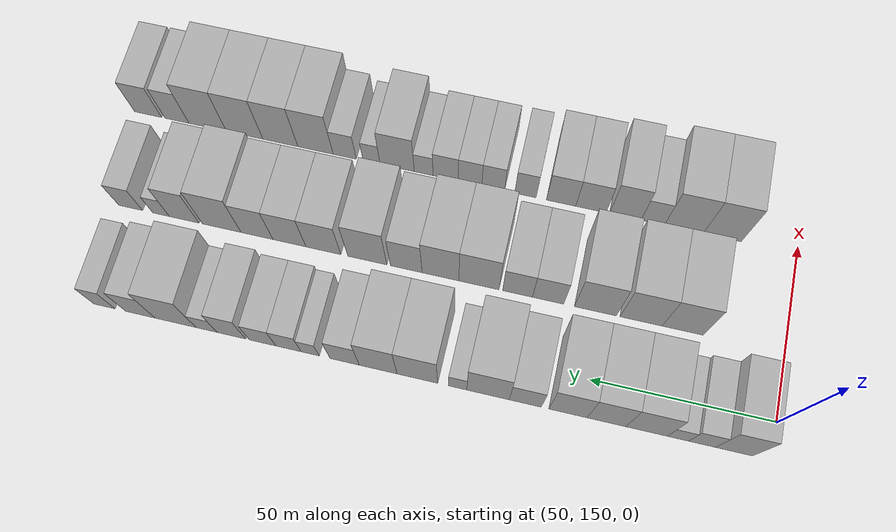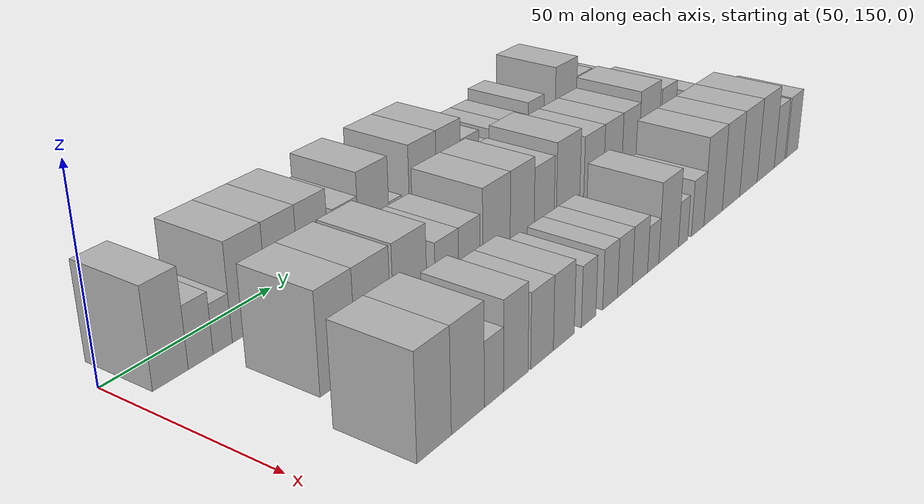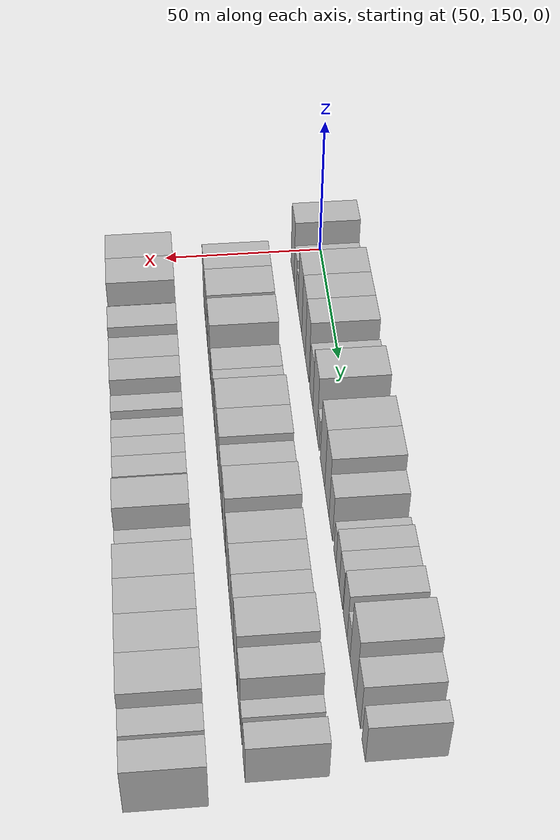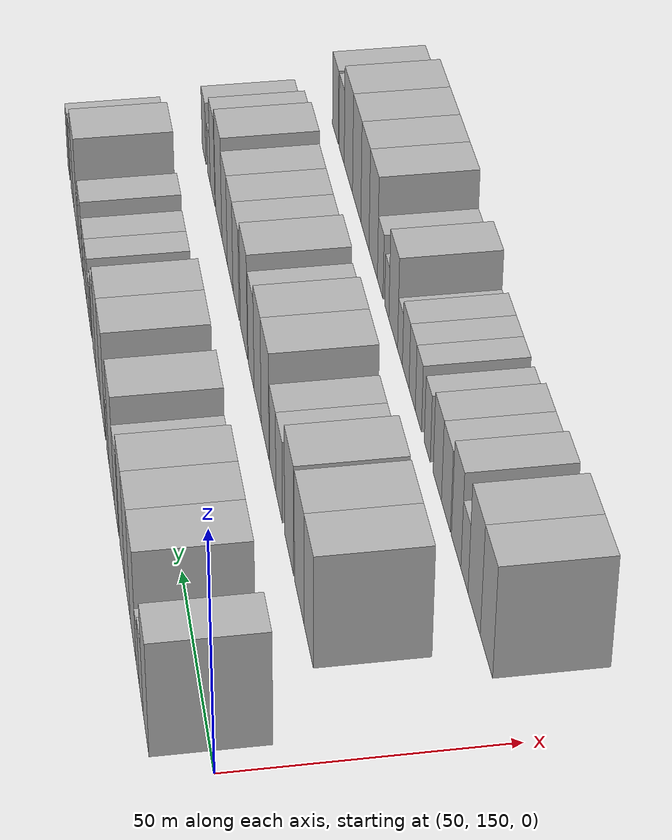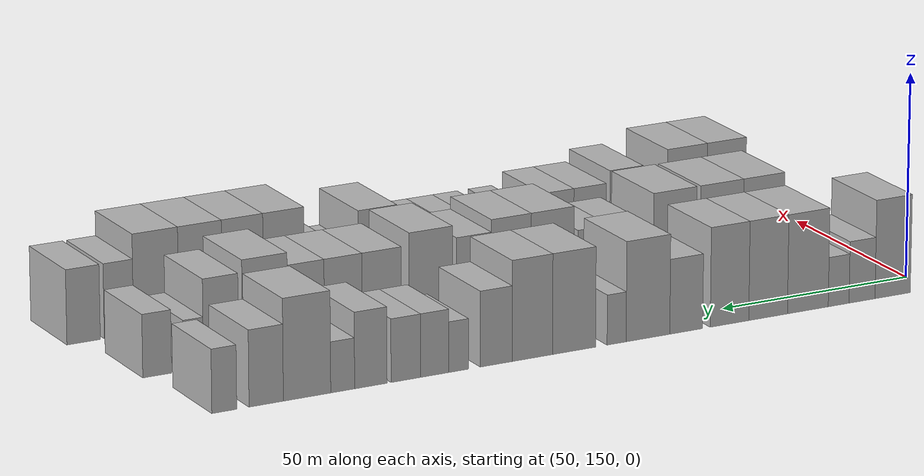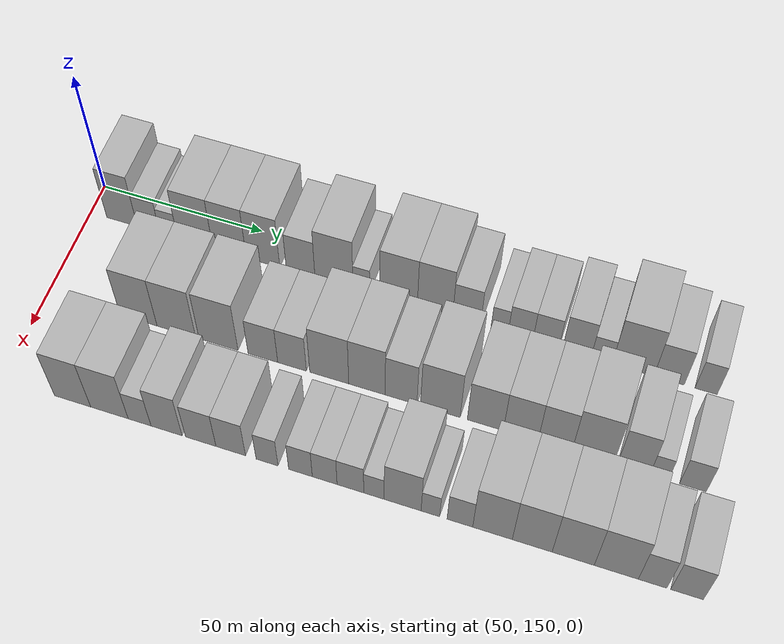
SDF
<sdf version="1.6">
 <world name="default">
  <model name="building_54">
   <static>1</static>
   <pose>50.0000 160.0127 0 0.000000 0.000000 0.000000</pose>
   <link name="link">
    <pose>0 0 12.00 0 0 0</pose>
    <collision name="collision"><geometry><box><size>20.0000 9.6808 24.0000</size></box></geometry></collision>
    <visual name="visual">
     <cast_shadows>0</cast_shadows>
     <geometry><box><size>20.0000 9.6808 24.0000</size></box></geometry>
     <material>
      <script>
       <uri>model://HANNAS_wall/materials/scripts</uri>
       <uri>model://HANNAS_wall/materials/textures</uri>
       <name>vrc/HANNAS_wall</name>
      </script>
     </material>
    </visual>
   </link>
  </model>
  <model name="building_55">
   <static>1</static>
   <pose>50.0000 168.3861 0 0.000000 0.000000 0.000000</pose>
   <link name="link">
    <pose>0 0 7.50 0 0 0</pose>
    <collision name="collision"><geometry><box><size>20.0000 7.0662 15.0000</size></box></geometry></collision>
    <visual name="visual">
     <cast_shadows>0</cast_shadows>
     <geometry><box><size>20.0000 7.0662 15.0000</size></box></geometry>
     <material>
      <script>
       <uri>model://HANNAS_wall/materials/scripts</uri>
       <uri>model://HANNAS_wall/materials/textures</uri>
       <name>vrc/HANNAS_wall</name>
      </script>
     </material>
    </visual>
   </link>
  </model>
  <model name="building_56">
   <static>1</static>
   <pose>50.0000 174.7349 0 0.000000 0.000000 0.000000</pose>
   <link name="link">
    <pose>0 0 6.00 0 0 0</pose>
    <collision name="collision"><geometry><box><size>20.0000 5.6313 12.0000</size></box></geometry></collision>
    <visual name="visual">
     <cast_shadows>0</cast_shadows>
     <geometry><box><size>20.0000 5.6313 12.0000</size></box></geometry>
     <material>
      <script>
       <uri>model://HANNAS_wall/materials/scripts</uri>
       <uri>model://HANNAS_wall/materials/textures</uri>
       <name>vrc/HANNAS_wall</name>
      </script>
     </material>
    </visual>
   </link>
  </model>
  <model name="building_57">
   <static>1</static>
   <pose>50.0000 183.0591 0 0.000000 0.000000 0.000000</pose>
   <link name="link">
    <pose>0 0 12.00 0 0 0</pose>
    <collision name="collision"><geometry><box><size>20.0000 11.0171 24.0000</size></box></geometry></collision>
    <visual name="visual">
     <cast_shadows>0</cast_shadows>
     <geometry><box><size>20.0000 11.0171 24.0000</size></box></geometry>
     <material>
      <script>
       <uri>model://HANNAS_wall/materials/scripts</uri>
       <uri>model://HANNAS_wall/materials/textures</uri>
       <name>vrc/HANNAS_wall</name>
      </script>
     </material>
    </visual>
   </link>
  </model>
  <model name="building_58">
   <static>1</static>
   <pose>50.0000 193.7491 0 0.000000 0.000000 0.000000</pose>
   <link name="link">
    <pose>0 0 12.00 0 0 0</pose>
    <collision name="collision"><geometry><box><size>20.0000 10.3629 24.0000</size></box></geometry></collision>
    <visual name="visual">
     <cast_shadows>0</cast_shadows>
     <geometry><box><size>20.0000 10.3629 24.0000</size></box></geometry>
     <material>
      <script>
       <uri>model://HANNAS_wall/materials/scripts</uri>
       <uri>model://HANNAS_wall/materials/textures</uri>
       <name>vrc/HANNAS_wall</name>
      </script>
     </material>
    </visual>
   </link>
  </model>
  <model name="building_59">
   <static>1</static>
   <pose>50.0000 204.0609 0 0.000000 0.000000 0.000000</pose>
   <link name="link">
    <pose>0 0 12.00 0 0 0</pose>
    <collision name="collision"><geometry><box><size>20.0000 10.2606 24.0000</size></box></geometry></collision>
    <visual name="visual">
     <cast_shadows>0</cast_shadows>
     <geometry><box><size>20.0000 10.2606 24.0000</size></box></geometry>
     <material>
      <script>
       <uri>model://HANNAS_wall/materials/scripts</uri>
       <uri>model://HANNAS_wall/materials/textures</uri>
       <name>vrc/HANNAS_wall</name>
      </script>
     </material>
    </visual>
   </link>
  </model>
  <model name="building_60">
   <static>1</static>
   <pose>50.0000 215.5393 0 0.000000 0.000000 0.000000</pose>
   <link name="link">
    <pose>0 0 9.00 0 0 0</pose>
    <collision name="collision"><geometry><box><size>20.0000 8.6963 18.0000</size></box></geometry></collision>
    <visual name="visual">
     <cast_shadows>0</cast_shadows>
     <geometry><box><size>20.0000 8.6963 18.0000</size></box></geometry>
     <material>
      <script>
       <uri>model://HANNAS_wall/materials/scripts</uri>
       <uri>model://HANNAS_wall/materials/textures</uri>
       <name>vrc/HANNAS_wall</name>
      </script>
     </material>
    </visual>
   </link>
  </model>
  <model name="building_61">
   <static>1</static>
   <pose>50.0000 225.6269 0 0.000000 0.000000 0.000000</pose>
   <link name="link">
    <pose>0 0 12.00 0 0 0</pose>
    <collision name="collision"><geometry><box><size>20.0000 11.4789 24.0000</size></box></geometry></collision>
    <visual name="visual">
     <cast_shadows>0</cast_shadows>
     <geometry><box><size>20.0000 11.4789 24.0000</size></box></geometry>
     <material>
      <script>
       <uri>model://HANNAS_wall/materials/scripts</uri>
       <uri>model://HANNAS_wall/materials/textures</uri>
       <name>vrc/HANNAS_wall</name>
      </script>
     </material>
    </visual>
   </link>
  </model>
  <model name="building_62">
   <static>1</static>
   <pose>50.0000 233.8528 0 0.000000 0.000000 0.000000</pose>
   <link name="link">
    <pose>0 0 6.00 0 0 0</pose>
    <collision name="collision"><geometry><box><size>20.0000 4.9729 12.0000</size></box></geometry></collision>
    <visual name="visual">
     <cast_shadows>0</cast_shadows>
     <geometry><box><size>20.0000 4.9729 12.0000</size></box></geometry>
     <material>
      <script>
       <uri>model://HANNAS_wall/materials/scripts</uri>
       <uri>model://HANNAS_wall/materials/textures</uri>
       <name>vrc/HANNAS_wall</name>
      </script>
     </material>
    </visual>
   </link>
  </model>
  <model name="building_63">
   <static>1</static>
   <pose>50.0000 244.9158 0 0.000000 0.000000 0.000000</pose>
   <link name="link">
    <pose>0 0 12.00 0 0 0</pose>
    <collision name="collision"><geometry><box><size>20.0000 11.1530 24.0000</size></box></geometry></collision>
    <visual name="visual">
     <cast_shadows>0</cast_shadows>
     <geometry><box><size>20.0000 11.1530 24.0000</size></box></geometry>
     <material>
      <script>
       <uri>model://HANNAS_wall/materials/scripts</uri>
       <uri>model://HANNAS_wall/materials/textures</uri>
       <name>vrc/HANNAS_wall</name>
      </script>
     </material>
    </visual>
   </link>
  </model>
  <model name="building_64">
   <static>1</static>
   <pose>50.0000 255.7028 0 0.000000 0.000000 0.000000</pose>
   <link name="link">
    <pose>0 0 12.00 0 0 0</pose>
    <collision name="collision"><geometry><box><size>20.0000 10.4210 24.0000</size></box></geometry></collision>
    <visual name="visual">
     <cast_shadows>0</cast_shadows>
     <geometry><box><size>20.0000 10.4210 24.0000</size></box></geometry>
     <material>
      <script>
       <uri>model://HANNAS_wall/materials/scripts</uri>
       <uri>model://HANNAS_wall/materials/textures</uri>
       <name>vrc/HANNAS_wall</name>
      </script>
     </material>
    </visual>
   </link>
  </model>
  <model name="building_65">
   <static>1</static>
   <pose>50.0000 264.9927 0 0.000000 0.000000 0.000000</pose>
   <link name="link">
    <pose>0 0 9.00 0 0 0</pose>
    <collision name="collision"><geometry><box><size>20.0000 8.1589 18.0000</size></box></geometry></collision>
    <visual name="visual">
     <cast_shadows>0</cast_shadows>
     <geometry><box><size>20.0000 8.1589 18.0000</size></box></geometry>
     <material>
      <script>
       <uri>model://HANNAS_wall/materials/scripts</uri>
       <uri>model://HANNAS_wall/materials/textures</uri>
       <name>vrc/HANNAS_wall</name>
      </script>
     </material>
    </visual>
   </link>
  </model>
  <model name="building_66">
   <static>1</static>
   <pose>50.0000 274.5761 0 0.000000 0.000000 0.000000</pose>
   <link name="link">
    <pose>0 0 6.00 0 0 0</pose>
    <collision name="collision"><geometry><box><size>20.0000 5.0078 12.0000</size></box></geometry></collision>
    <visual name="visual">
     <cast_shadows>0</cast_shadows>
     <geometry><box><size>20.0000 5.0078 12.0000</size></box></geometry>
     <material>
      <script>
       <uri>model://HANNAS_wall/materials/scripts</uri>
       <uri>model://HANNAS_wall/materials/textures</uri>
       <name>vrc/HANNAS_wall</name>
      </script>
     </material>
    </visual>
   </link>
  </model>
  <model name="building_67">
   <static>1</static>
   <pose>50.0000 280.6419 0 0.000000 0.000000 0.000000</pose>
   <link name="link">
    <pose>0 0 7.50 0 0 0</pose>
    <collision name="collision"><geometry><box><size>20.0000 7.1239 15.0000</size></box></geometry></collision>
    <visual name="visual">
     <cast_shadows>0</cast_shadows>
     <geometry><box><size>20.0000 7.1239 15.0000</size></box></geometry>
     <material>
      <script>
       <uri>model://HANNAS_wall/materials/scripts</uri>
       <uri>model://HANNAS_wall/materials/textures</uri>
       <name>vrc/HANNAS_wall</name>
      </script>
     </material>
    </visual>
   </link>
  </model>
  <model name="building_68">
   <static>1</static>
   <pose>50.0000 287.9480 0 0.000000 0.000000 0.000000</pose>
   <link name="link">
    <pose>0 0 7.50 0 0 0</pose>
    <collision name="collision"><geometry><box><size>20.0000 7.4883 15.0000</size></box></geometry></collision>
    <visual name="visual">
     <cast_shadows>0</cast_shadows>
     <geometry><box><size>20.0000 7.4883 15.0000</size></box></geometry>
     <material>
      <script>
       <uri>model://HANNAS_wall/materials/scripts</uri>
       <uri>model://HANNAS_wall/materials/textures</uri>
       <name>vrc/HANNAS_wall</name>
      </script>
     </material>
    </visual>
   </link>
  </model>
  <model name="building_69">
   <static>1</static>
   <pose>50.0000 296.7629 0 0.000000 0.000000 0.000000</pose>
   <link name="link">
    <pose>0 0 9.00 0 0 0</pose>
    <collision name="collision"><geometry><box><size>20.0000 8.1414 18.0000</size></box></geometry></collision>
    <visual name="visual">
     <cast_shadows>0</cast_shadows>
     <geometry><box><size>20.0000 8.1414 18.0000</size></box></geometry>
     <material>
      <script>
       <uri>model://HANNAS_wall/materials/scripts</uri>
       <uri>model://HANNAS_wall/materials/textures</uri>
       <name>vrc/HANNAS_wall</name>
      </script>
     </material>
    </visual>
   </link>
  </model>
  <model name="building_70">
   <static>1</static>
   <pose>50.0000 303.8157 0 0.000000 0.000000 0.000000</pose>
   <link name="link">
    <pose>0 0 6.00 0 0 0</pose>
    <collision name="collision"><geometry><box><size>20.0000 5.9644 12.0000</size></box></geometry></collision>
    <visual name="visual">
     <cast_shadows>0</cast_shadows>
     <geometry><box><size>20.0000 5.9644 12.0000</size></box></geometry>
     <material>
      <script>
       <uri>model://HANNAS_wall/materials/scripts</uri>
       <uri>model://HANNAS_wall/materials/textures</uri>
       <name>vrc/HANNAS_wall</name>
      </script>
     </material>
    </visual>
   </link>
  </model>
  <model name="building_71">
   <static>1</static>
   <pose>50.0000 312.6770 0 0.000000 0.000000 0.000000</pose>
   <link name="link">
    <pose>0 0 12.00 0 0 0</pose>
    <collision name="collision"><geometry><box><size>20.0000 11.7581 24.0000</size></box></geometry></collision>
    <visual name="visual">
     <cast_shadows>0</cast_shadows>
     <geometry><box><size>20.0000 11.7581 24.0000</size></box></geometry>
     <material>
      <script>
       <uri>model://HANNAS_wall/materials/scripts</uri>
       <uri>model://HANNAS_wall/materials/textures</uri>
       <name>vrc/HANNAS_wall</name>
      </script>
     </material>
    </visual>
   </link>
  </model>
  <model name="building_72">
   <static>1</static>
   <pose>50.0000 322.7922 0 0.000000 0.000000 0.000000</pose>
   <link name="link">
    <pose>0 0 9.00 0 0 0</pose>
    <collision name="collision"><geometry><box><size>20.0000 8.4723 18.0000</size></box></geometry></collision>
    <visual name="visual">
     <cast_shadows>0</cast_shadows>
     <geometry><box><size>20.0000 8.4723 18.0000</size></box></geometry>
     <material>
      <script>
       <uri>model://HANNAS_wall/materials/scripts</uri>
       <uri>model://HANNAS_wall/materials/textures</uri>
       <name>vrc/HANNAS_wall</name>
      </script>
     </material>
    </visual>
   </link>
  </model>
  <model name="building_73">
   <static>1</static>
   <pose>50.0000 333.0899 0 0.000000 0.000000 0.000000</pose>
   <link name="link">
    <pose>0 0 7.50 0 0 0</pose>
    <collision name="collision"><geometry><box><size>20.0000 6.1232 15.0000</size></box></geometry></collision>
    <visual name="visual">
     <cast_shadows>0</cast_shadows>
     <geometry><box><size>20.0000 6.1232 15.0000</size></box></geometry>
     <material>
      <script>
       <uri>model://HANNAS_wall/materials/scripts</uri>
       <uri>model://HANNAS_wall/materials/textures</uri>
       <name>vrc/HANNAS_wall</name>
      </script>
     </material>
    </visual>
   </link>
  </model>
  <model name="building_128">
   <static>1</static>
   <pose>79.0000 177.8788 0 0.000000 0.000000 0.000000</pose>
   <link name="link">
    <pose>0 0 12.00 0 0 0</pose>
    <collision name="collision"><geometry><box><size>20.0000 11.1970 24.0000</size></box></geometry></collision>
    <visual name="visual">
     <cast_shadows>0</cast_shadows>
     <geometry><box><size>20.0000 11.1970 24.0000</size></box></geometry>
     <material>
      <script>
       <uri>model://HANNAS_wall/materials/scripts</uri>
       <uri>model://HANNAS_wall/materials/textures</uri>
       <name>vrc/HANNAS_wall</name>
      </script>
     </material>
    </visual>
   </link>
  </model>
  <model name="building_129">
   <static>1</static>
   <pose>79.0000 189.3049 0 0.000000 0.000000 0.000000</pose>
   <link name="link">
    <pose>0 0 12.00 0 0 0</pose>
    <collision name="collision"><geometry><box><size>20.0000 11.6552 24.0000</size></box></geometry></collision>
    <visual name="visual">
     <cast_shadows>0</cast_shadows>
     <geometry><box><size>20.0000 11.6552 24.0000</size></box></geometry>
     <material>
      <script>
       <uri>model://HANNAS_wall/materials/scripts</uri>
       <uri>model://HANNAS_wall/materials/textures</uri>
       <name>vrc/HANNAS_wall</name>
      </script>
     </material>
    </visual>
   </link>
  </model>
  <model name="building_130">
   <static>1</static>
   <pose>79.0000 201.9460 0 0.000000 0.000000 0.000000</pose>
   <link name="link">
    <pose>0 0 12.00 0 0 0</pose>
    <collision name="collision"><geometry><box><size>20.0000 11.6270 24.0000</size></box></geometry></collision>
    <visual name="visual">
     <cast_shadows>0</cast_shadows>
     <geometry><box><size>20.0000 11.6270 24.0000</size></box></geometry>
     <material>
      <script>
       <uri>model://HANNAS_wall/materials/scripts</uri>
       <uri>model://HANNAS_wall/materials/textures</uri>
       <name>vrc/HANNAS_wall</name>
      </script>
     </material>
    </visual>
   </link>
  </model>
  <model name="building_131">
   <static>1</static>
   <pose>79.0000 215.1276 0 0.000000 0.000000 0.000000</pose>
   <link name="link">
    <pose>0 0 9.00 0 0 0</pose>
    <collision name="collision"><geometry><box><size>20.0000 8.7361 18.0000</size></box></geometry></collision>
    <visual name="visual">
     <cast_shadows>0</cast_shadows>
     <geometry><box><size>20.0000 8.7361 18.0000</size></box></geometry>
     <material>
      <script>
       <uri>model://HANNAS_wall/materials/scripts</uri>
       <uri>model://HANNAS_wall/materials/textures</uri>
       <name>vrc/HANNAS_wall</name>
      </script>
     </material>
    </visual>
   </link>
  </model>
  <model name="building_132">
   <static>1</static>
   <pose>79.0000 223.6908 0 0.000000 0.000000 0.000000</pose>
   <link name="link">
    <pose>0 0 9.00 0 0 0</pose>
    <collision name="collision"><geometry><box><size>20.0000 8.3902 18.0000</size></box></geometry></collision>
    <visual name="visual">
     <cast_shadows>0</cast_shadows>
     <geometry><box><size>20.0000 8.3902 18.0000</size></box></geometry>
     <material>
      <script>
       <uri>model://HANNAS_wall/materials/scripts</uri>
       <uri>model://HANNAS_wall/materials/textures</uri>
       <name>vrc/HANNAS_wall</name>
      </script>
     </material>
    </visual>
   </link>
  </model>
  <model name="building_133">
   <static>1</static>
   <pose>79.0000 234.5435 0 0.000000 0.000000 0.000000</pose>
   <link name="link">
    <pose>0 0 12.00 0 0 0</pose>
    <collision name="collision"><geometry><box><size>20.0000 11.3152 24.0000</size></box></geometry></collision>
    <visual name="visual">
     <cast_shadows>0</cast_shadows>
     <geometry><box><size>20.0000 11.3152 24.0000</size></box></geometry>
     <material>
      <script>
       <uri>model://HANNAS_wall/materials/scripts</uri>
       <uri>model://HANNAS_wall/materials/textures</uri>
       <name>vrc/HANNAS_wall</name>
      </script>
     </material>
    </visual>
   </link>
  </model>
  <model name="building_134">
   <static>1</static>
   <pose>79.0000 245.4208 0 0.000000 0.000000 0.000000</pose>
   <link name="link">
    <pose>0 0 12.00 0 0 0</pose>
    <collision name="collision"><geometry><box><size>20.0000 10.4394 24.0000</size></box></geometry></collision>
    <visual name="visual">
     <cast_shadows>0</cast_shadows>
     <geometry><box><size>20.0000 10.4394 24.0000</size></box></geometry>
     <material>
      <script>
       <uri>model://HANNAS_wall/materials/scripts</uri>
       <uri>model://HANNAS_wall/materials/textures</uri>
       <name>vrc/HANNAS_wall</name>
      </script>
     </material>
    </visual>
   </link>
  </model>
  <model name="building_135">
   <static>1</static>
   <pose>79.0000 255.1900 0 0.000000 0.000000 0.000000</pose>
   <link name="link">
    <pose>0 0 10.50 0 0 0</pose>
    <collision name="collision"><geometry><box><size>20.0000 9.0991 21.0000</size></box></geometry></collision>
    <visual name="visual">
     <cast_shadows>0</cast_shadows>
     <geometry><box><size>20.0000 9.0991 21.0000</size></box></geometry>
     <material>
      <script>
       <uri>model://HANNAS_wall/materials/scripts</uri>
       <uri>model://HANNAS_wall/materials/textures</uri>
       <name>vrc/HANNAS_wall</name>
      </script>
     </material>
    </visual>
   </link>
  </model>
  <model name="building_136">
   <static>1</static>
   <pose>79.0000 266.3542 0 0.000000 0.000000 0.000000</pose>
   <link name="link">
    <pose>0 0 12.00 0 0 0</pose>
    <collision name="collision"><geometry><box><size>20.0000 11.2293 24.0000</size></box></geometry></collision>
    <visual name="visual">
     <cast_shadows>0</cast_shadows>
     <geometry><box><size>20.0000 11.2293 24.0000</size></box></geometry>
     <material>
      <script>
       <uri>model://HANNAS_wall/materials/scripts</uri>
       <uri>model://HANNAS_wall/materials/textures</uri>
       <name>vrc/HANNAS_wall</name>
      </script>
     </material>
    </visual>
   </link>
  </model>
  <model name="building_137">
   <static>1</static>
   <pose>79.0000 279.0151 0 0.000000 0.000000 0.000000</pose>
   <link name="link">
    <pose>0 0 10.50 0 0 0</pose>
    <collision name="collision"><geometry><box><size>20.0000 10.0925 21.0000</size></box></geometry></collision>
    <visual name="visual">
     <cast_shadows>0</cast_shadows>
     <geometry><box><size>20.0000 10.0925 21.0000</size></box></geometry>
     <material>
      <script>
       <uri>model://HANNAS_wall/materials/scripts</uri>
       <uri>model://HANNAS_wall/materials/textures</uri>
       <name>vrc/HANNAS_wall</name>
      </script>
     </material>
    </visual>
   </link>
  </model>
  <model name="building_138">
   <static>1</static>
   <pose>79.0000 288.8775 0 0.000000 0.000000 0.000000</pose>
   <link name="link">
    <pose>0 0 10.50 0 0 0</pose>
    <collision name="collision"><geometry><box><size>20.0000 9.6322 21.0000</size></box></geometry></collision>
    <visual name="visual">
     <cast_shadows>0</cast_shadows>
     <geometry><box><size>20.0000 9.6322 21.0000</size></box></geometry>
     <material>
      <script>
       <uri>model://HANNAS_wall/materials/scripts</uri>
       <uri>model://HANNAS_wall/materials/textures</uri>
       <name>vrc/HANNAS_wall</name>
      </script>
     </material>
    </visual>
   </link>
  </model>
  <model name="building_139">
   <static>1</static>
   <pose>79.0000 298.3473 0 0.000000 0.000000 0.000000</pose>
   <link name="link">
    <pose>0 0 10.50 0 0 0</pose>
    <collision name="collision"><geometry><box><size>20.0000 9.3076 21.0000</size></box></geometry></collision>
    <visual name="visual">
     <cast_shadows>0</cast_shadows>
     <geometry><box><size>20.0000 9.3076 21.0000</size></box></geometry>
     <material>
      <script>
       <uri>model://HANNAS_wall/materials/scripts</uri>
       <uri>model://HANNAS_wall/materials/textures</uri>
       <name>vrc/HANNAS_wall</name>
      </script>
     </material>
    </visual>
   </link>
  </model>
  <model name="building_140">
   <static>1</static>
   <pose>79.0000 308.6902 0 0.000000 0.000000 0.000000</pose>
   <link name="link">
    <pose>0 0 12.00 0 0 0</pose>
    <collision name="collision"><geometry><box><size>20.0000 11.3782 24.0000</size></box></geometry></collision>
    <visual name="visual">
     <cast_shadows>0</cast_shadows>
     <geometry><box><size>20.0000 11.3782 24.0000</size></box></geometry>
     <material>
      <script>
       <uri>model://HANNAS_wall/materials/scripts</uri>
       <uri>model://HANNAS_wall/materials/textures</uri>
       <name>vrc/HANNAS_wall</name>
      </script>
     </material>
    </visual>
   </link>
  </model>
  <model name="building_141">
   <static>1</static>
   <pose>79.0000 319.7892 0 0.000000 0.000000 0.000000</pose>
   <link name="link">
    <pose>0 0 10.50 0 0 0</pose>
    <collision name="collision"><geometry><box><size>20.0000 8.8197 21.0000</size></box></geometry></collision>
    <visual name="visual">
     <cast_shadows>0</cast_shadows>
     <geometry><box><size>20.0000 8.8197 21.0000</size></box></geometry>
     <material>
      <script>
       <uri>model://HANNAS_wall/materials/scripts</uri>
       <uri>model://HANNAS_wall/materials/textures</uri>
       <name>vrc/HANNAS_wall</name>
      </script>
     </material>
    </visual>
   </link>
  </model>
  <model name="building_142">
   <static>1</static>
   <pose>79.0000 326.6696 0 0.000000 0.000000 0.000000</pose>
   <link name="link">
    <pose>0 0 6.00 0 0 0</pose>
    <collision name="collision"><geometry><box><size>20.0000 4.9411 12.0000</size></box></geometry></collision>
    <visual name="visual">
     <cast_shadows>0</cast_shadows>
     <geometry><box><size>20.0000 4.9411 12.0000</size></box></geometry>
     <material>
      <script>
       <uri>model://HANNAS_wall/materials/scripts</uri>
       <uri>model://HANNAS_wall/materials/textures</uri>
       <name>vrc/HANNAS_wall</name>
      </script>
     </material>
    </visual>
   </link>
  </model>
  <model name="building_143">
   <static>1</static>
   <pose>79.0000 335.7144 0 0.000000 0.000000 0.000000</pose>
   <link name="link">
    <pose>0 0 7.50 0 0 0</pose>
    <collision name="collision"><geometry><box><size>20.0000 7.1486 15.0000</size></box></geometry></collision>
    <visual name="visual">
     <cast_shadows>0</cast_shadows>
     <geometry><box><size>20.0000 7.1486 15.0000</size></box></geometry>
     <material>
      <script>
       <uri>model://HANNAS_wall/materials/scripts</uri>
       <uri>model://HANNAS_wall/materials/textures</uri>
       <name>vrc/HANNAS_wall</name>
      </script>
     </material>
    </visual>
   </link>
  </model>
  <model name="building_204">
   <static>1</static>
   <pose>108.0000 171.0347 0 0.000000 0.000000 0.000000</pose>
   <link name="link">
    <pose>0 0 12.00 0 0 0</pose>
    <collision name="collision"><geometry><box><size>20.0000 10.7537 24.0000</size></box></geometry></collision>
    <visual name="visual">
     <cast_shadows>0</cast_shadows>
     <geometry><box><size>20.0000 10.7537 24.0000</size></box></geometry>
     <material>
      <script>
       <uri>model://HANNAS_wall/materials/scripts</uri>
       <uri>model://HANNAS_wall/materials/textures</uri>
       <name>vrc/HANNAS_wall</name>
      </script>
     </material>
    </visual>
   </link>
  </model>
  <model name="building_205">
   <static>1</static>
   <pose>108.0000 181.9264 0 0.000000 0.000000 0.000000</pose>
   <link name="link">
    <pose>0 0 12.00 0 0 0</pose>
    <collision name="collision"><geometry><box><size>20.0000 11.0298 24.0000</size></box></geometry></collision>
    <visual name="visual">
     <cast_shadows>0</cast_shadows>
     <geometry><box><size>20.0000 11.0298 24.0000</size></box></geometry>
     <material>
      <script>
       <uri>model://HANNAS_wall/materials/scripts</uri>
       <uri>model://HANNAS_wall/materials/textures</uri>
       <name>vrc/HANNAS_wall</name>
      </script>
     </material>
    </visual>
   </link>
  </model>
  <model name="building_206">
   <static>1</static>
   <pose>108.0000 190.7756 0 0.000000 0.000000 0.000000</pose>
   <link name="link">
    <pose>0 0 7.50 0 0 0</pose>
    <collision name="collision"><geometry><box><size>20.0000 6.6686 15.0000</size></box></geometry></collision>
    <visual name="visual">
     <cast_shadows>0</cast_shadows>
     <geometry><box><size>20.0000 6.6686 15.0000</size></box></geometry>
     <material>
      <script>
       <uri>model://HANNAS_wall/materials/scripts</uri>
       <uri>model://HANNAS_wall/materials/textures</uri>
       <name>vrc/HANNAS_wall</name>
      </script>
     </material>
    </visual>
   </link>
  </model>
  <model name="building_207">
   <static>1</static>
   <pose>108.0000 198.6110 0 0.000000 0.000000 0.000000</pose>
   <link name="link">
    <pose>0 0 10.50 0 0 0</pose>
    <collision name="collision"><geometry><box><size>20.0000 9.0022 21.0000</size></box></geometry></collision>
    <visual name="visual">
     <cast_shadows>0</cast_shadows>
     <geometry><box><size>20.0000 9.0022 21.0000</size></box></geometry>
     <material>
      <script>
       <uri>model://HANNAS_wall/materials/scripts</uri>
       <uri>model://HANNAS_wall/materials/textures</uri>
       <name>vrc/HANNAS_wall</name>
      </script>
     </material>
    </visual>
   </link>
  </model>
  <model name="building_208">
   <static>1</static>
   <pose>108.0000 208.4934 0 0.000000 0.000000 0.000000</pose>
   <link name="link">
    <pose>0 0 9.00 0 0 0</pose>
    <collision name="collision"><geometry><box><size>20.0000 8.7626 18.0000</size></box></geometry></collision>
    <visual name="visual">
     <cast_shadows>0</cast_shadows>
     <geometry><box><size>20.0000 8.7626 18.0000</size></box></geometry>
     <material>
      <script>
       <uri>model://HANNAS_wall/materials/scripts</uri>
       <uri>model://HANNAS_wall/materials/textures</uri>
       <name>vrc/HANNAS_wall</name>
      </script>
     </material>
    </visual>
   </link>
  </model>
  <model name="building_209">
   <static>1</static>
   <pose>108.0000 217.0992 0 0.000000 0.000000 0.000000</pose>
   <link name="link">
    <pose>0 0 9.00 0 0 0</pose>
    <collision name="collision"><geometry><box><size>20.0000 8.4489 18.0000</size></box></geometry></collision>
    <visual name="visual">
     <cast_shadows>0</cast_shadows>
     <geometry><box><size>20.0000 8.4489 18.0000</size></box></geometry>
     <material>
      <script>
       <uri>model://HANNAS_wall/materials/scripts</uri>
       <uri>model://HANNAS_wall/materials/textures</uri>
       <name>vrc/HANNAS_wall</name>
      </script>
     </material>
    </visual>
   </link>
  </model>
  <model name="building_210">
   <static>1</static>
   <pose>108.0000 227.4244 0 0.000000 0.000000 0.000000</pose>
   <link name="link">
    <pose>0 0 7.50 0 0 0</pose>
    <collision name="collision"><geometry><box><size>20.0000 6.2015 15.0000</size></box></geometry></collision>
    <visual name="visual">
     <cast_shadows>0</cast_shadows>
     <geometry><box><size>20.0000 6.2015 15.0000</size></box></geometry>
     <material>
      <script>
       <uri>model://HANNAS_wall/materials/scripts</uri>
       <uri>model://HANNAS_wall/materials/textures</uri>
       <name>vrc/HANNAS_wall</name>
      </script>
     </material>
    </visual>
   </link>
  </model>
  <model name="building_211">
   <static>1</static>
   <pose>108.0000 236.8457 0 0.000000 0.000000 0.000000</pose>
   <link name="link">
    <pose>0 0 7.50 0 0 0</pose>
    <collision name="collision"><geometry><box><size>20.0000 6.6411 15.0000</size></box></geometry></collision>
    <visual name="visual">
     <cast_shadows>0</cast_shadows>
     <geometry><box><size>20.0000 6.6411 15.0000</size></box></geometry>
     <material>
      <script>
       <uri>model://HANNAS_wall/materials/scripts</uri>
       <uri>model://HANNAS_wall/materials/textures</uri>
       <name>vrc/HANNAS_wall</name>
      </script>
     </material>
    </visual>
   </link>
  </model>
  <model name="building_212">
   <static>1</static>
   <pose>108.0000 243.6155 0 0.000000 0.000000 0.000000</pose>
   <link name="link">
    <pose>0 0 7.50 0 0 0</pose>
    <collision name="collision"><geometry><box><size>20.0000 6.8984 15.0000</size></box></geometry></collision>
    <visual name="visual">
     <cast_shadows>0</cast_shadows>
     <geometry><box><size>20.0000 6.8984 15.0000</size></box></geometry>
     <material>
      <script>
       <uri>model://HANNAS_wall/materials/scripts</uri>
       <uri>model://HANNAS_wall/materials/textures</uri>
       <name>vrc/HANNAS_wall</name>
      </script>
     </material>
    </visual>
   </link>
  </model>
  <model name="building_213">
   <static>1</static>
   <pose>108.0000 250.7644 0 0.000000 0.000000 0.000000</pose>
   <link name="link">
    <pose>0 0 7.50 0 0 0</pose>
    <collision name="collision"><geometry><box><size>20.0000 7.3994 15.0000</size></box></geometry></collision>
    <visual name="visual">
     <cast_shadows>0</cast_shadows>
     <geometry><box><size>20.0000 7.3994 15.0000</size></box></geometry>
     <material>
      <script>
       <uri>model://HANNAS_wall/materials/scripts</uri>
       <uri>model://HANNAS_wall/materials/textures</uri>
       <name>vrc/HANNAS_wall</name>
      </script>
     </material>
    </visual>
   </link>
  </model>
  <model name="building_214">
   <static>1</static>
   <pose>108.0000 257.2499 0 0.000000 0.000000 0.000000</pose>
   <link name="link">
    <pose>0 0 6.00 0 0 0</pose>
    <collision name="collision"><geometry><box><size>20.0000 5.5717 12.0000</size></box></geometry></collision>
    <visual name="visual">
     <cast_shadows>0</cast_shadows>
     <geometry><box><size>20.0000 5.5717 12.0000</size></box></geometry>
     <material>
      <script>
       <uri>model://HANNAS_wall/materials/scripts</uri>
       <uri>model://HANNAS_wall/materials/textures</uri>
       <name>vrc/HANNAS_wall</name>
      </script>
     </material>
    </visual>
   </link>
  </model>
  <model name="building_215">
   <static>1</static>
   <pose>108.0000 265.1202 0 0.000000 0.000000 0.000000</pose>
   <link name="link">
    <pose>0 0 10.50 0 0 0</pose>
    <collision name="collision"><geometry><box><size>20.0000 10.1689 21.0000</size></box></geometry></collision>
    <visual name="visual">
     <cast_shadows>0</cast_shadows>
     <geometry><box><size>20.0000 10.1689 21.0000</size></box></geometry>
     <material>
      <script>
       <uri>model://HANNAS_wall/materials/scripts</uri>
       <uri>model://HANNAS_wall/materials/textures</uri>
       <name>vrc/HANNAS_wall</name>
      </script>
     </material>
    </visual>
   </link>
  </model>
  <model name="building_216">
   <static>1</static>
   <pose>108.0000 272.7353 0 0.000000 0.000000 0.000000</pose>
   <link name="link">
    <pose>0 0 6.00 0 0 0</pose>
    <collision name="collision"><geometry><box><size>20.0000 5.0613 12.0000</size></box></geometry></collision>
    <visual name="visual">
     <cast_shadows>0</cast_shadows>
     <geometry><box><size>20.0000 5.0613 12.0000</size></box></geometry>
     <material>
      <script>
       <uri>model://HANNAS_wall/materials/scripts</uri>
       <uri>model://HANNAS_wall/materials/textures</uri>
       <name>vrc/HANNAS_wall</name>
      </script>
     </material>
    </visual>
   </link>
  </model>
  <model name="building_217">
   <static>1</static>
   <pose>108.0000 280.7282 0 0.000000 0.000000 0.000000</pose>
   <link name="link">
    <pose>0 0 7.50 0 0 0</pose>
    <collision name="collision"><geometry><box><size>20.0000 6.9245 15.0000</size></box></geometry></collision>
    <visual name="visual">
     <cast_shadows>0</cast_shadows>
     <geometry><box><size>20.0000 6.9245 15.0000</size></box></geometry>
     <material>
      <script>
       <uri>model://HANNAS_wall/materials/scripts</uri>
       <uri>model://HANNAS_wall/materials/textures</uri>
       <name>vrc/HANNAS_wall</name>
      </script>
     </material>
    </visual>
   </link>
  </model>
  <model name="building_218">
   <static>1</static>
   <pose>108.0000 289.5001 0 0.000000 0.000000 0.000000</pose>
   <link name="link">
    <pose>0 0 12.00 0 0 0</pose>
    <collision name="collision"><geometry><box><size>20.0000 10.6193 24.0000</size></box></geometry></collision>
    <visual name="visual">
     <cast_shadows>0</cast_shadows>
     <geometry><box><size>20.0000 10.6193 24.0000</size></box></geometry>
     <material>
      <script>
       <uri>model://HANNAS_wall/materials/scripts</uri>
       <uri>model://HANNAS_wall/materials/textures</uri>
       <name>vrc/HANNAS_wall</name>
      </script>
     </material>
    </visual>
   </link>
  </model>
  <model name="building_219">
   <static>1</static>
   <pose>108.0000 300.1048 0 0.000000 0.000000 0.000000</pose>
   <link name="link">
    <pose>0 0 12.00 0 0 0</pose>
    <collision name="collision"><geometry><box><size>20.0000 10.5901 24.0000</size></box></geometry></collision>
    <visual name="visual">
     <cast_shadows>0</cast_shadows>
     <geometry><box><size>20.0000 10.5901 24.0000</size></box></geometry>
     <material>
      <script>
       <uri>model://HANNAS_wall/materials/scripts</uri>
       <uri>model://HANNAS_wall/materials/textures</uri>
       <name>vrc/HANNAS_wall</name>
      </script>
     </material>
    </visual>
   </link>
  </model>
  <model name="building_220">
   <static>1</static>
   <pose>108.0000 310.9494 0 0.000000 0.000000 0.000000</pose>
   <link name="link">
    <pose>0 0 12.00 0 0 0</pose>
    <collision name="collision"><geometry><box><size>20.0000 11.0993 24.0000</size></box></geometry></collision>
    <visual name="visual">
     <cast_shadows>0</cast_shadows>
     <geometry><box><size>20.0000 11.0993 24.0000</size></box></geometry>
     <material>
      <script>
       <uri>model://HANNAS_wall/materials/scripts</uri>
       <uri>model://HANNAS_wall/materials/textures</uri>
       <name>vrc/HANNAS_wall</name>
      </script>
     </material>
    </visual>
   </link>
  </model>
  <model name="building_221">
   <static>1</static>
   <pose>108.0000 322.2297 0 0.000000 0.000000 0.000000</pose>
   <link name="link">
    <pose>0 0 12.00 0 0 0</pose>
    <collision name="collision"><geometry><box><size>20.0000 11.4613 24.0000</size></box></geometry></collision>
    <visual name="visual">
     <cast_shadows>0</cast_shadows>
     <geometry><box><size>20.0000 11.4613 24.0000</size></box></geometry>
     <material>
      <script>
       <uri>model://HANNAS_wall/materials/scripts</uri>
       <uri>model://HANNAS_wall/materials/textures</uri>
       <name>vrc/HANNAS_wall</name>
      </script>
     </material>
    </visual>
   </link>
  </model>
  <model name="building_222">
   <static>1</static>
   <pose>108.0000 331.6478 0 0.000000 0.000000 0.000000</pose>
   <link name="link">
    <pose>0 0 9.00 0 0 0</pose>
    <collision name="collision"><geometry><box><size>20.0000 7.3749 18.0000</size></box></geometry></collision>
    <visual name="visual">
     <cast_shadows>0</cast_shadows>
     <geometry><box><size>20.0000 7.3749 18.0000</size></box></geometry>
     <material>
      <script>
       <uri>model://HANNAS_wall/materials/scripts</uri>
       <uri>model://HANNAS_wall/materials/textures</uri>
       <name>vrc/HANNAS_wall</name>
      </script>
     </material>
    </visual>
   </link>
  </model>
  <model name="building_223">
   <static>1</static>
   <pose>108.0000 340.5165 0 0.000000 0.000000 0.000000</pose>
   <link name="link">
    <pose>0 0 9.00 0 0 0</pose>
    <collision name="collision"><geometry><box><size>20.0000 8.3626 18.0000</size></box></geometry></collision>
    <visual name="visual">
     <cast_shadows>0</cast_shadows>
     <geometry><box><size>20.0000 8.3626 18.0000</size></box></geometry>
     <material>
      <script>
       <uri>model://HANNAS_wall/materials/scripts</uri>
       <uri>model://HANNAS_wall/materials/textures</uri>
       <name>vrc/HANNAS_wall</name>
      </script>
     </material>
    </visual>
   </link>
  </model>
 </world>
</sdf>
